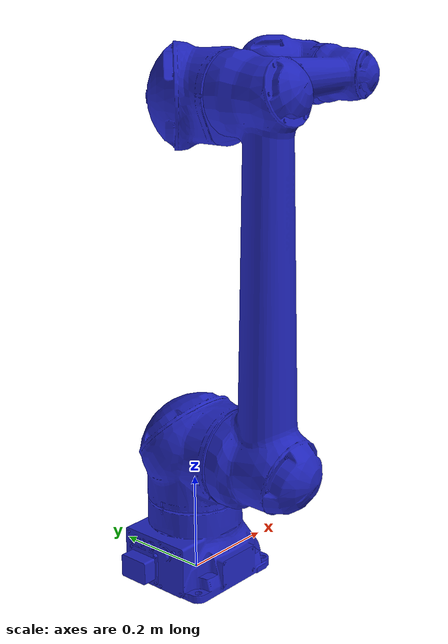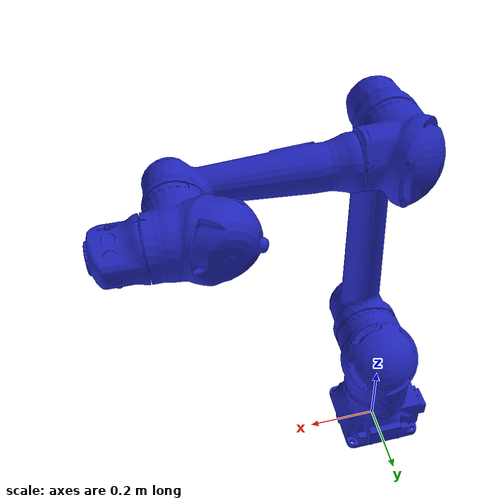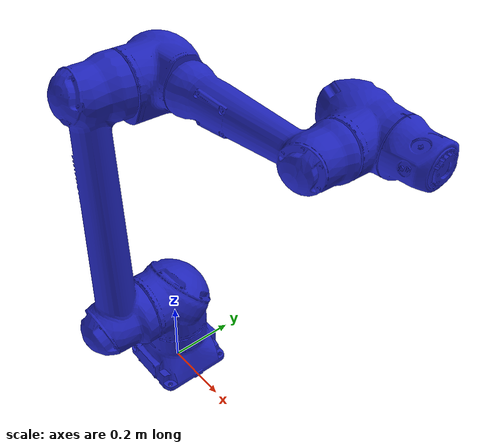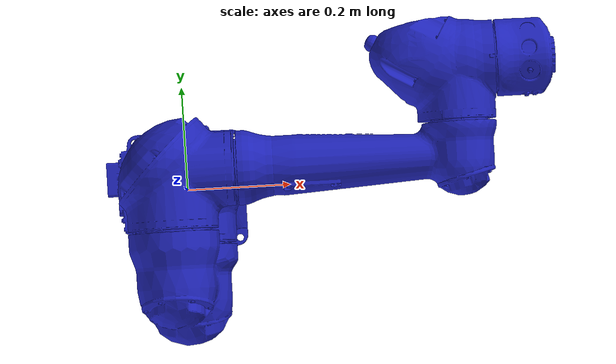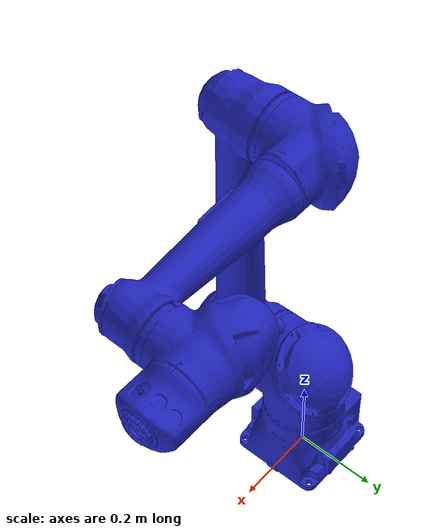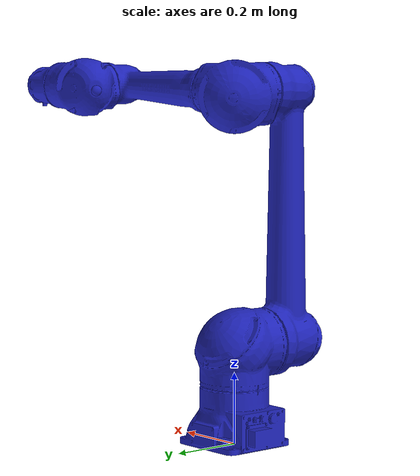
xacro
<?xml version="1.0"?>
<robot xmlns:xacro="http://www.ros.org/wiki/xacro" name="motoman_hc10dtp_b00">
    <xacro:arg name="initial_positions_file" default="initial_positions.yaml" />

    <!-- Import motoman_hc10dtp_b00 urdf file -->
    <xacro:include filename="$(find motoman_hc10_support)/urdf/hc10dtp_b00.urdf" />

</robot>

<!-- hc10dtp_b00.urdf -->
<!-- |    This document was autogenerated by xacro from hc10dtp_b00.xacro              | -->
<!-- |    EDITING THIS FILE BY HAND IS NOT RECOMMENDED                                 | -->
<robot name="motoman_hc10dtp_b00">
  <!-- link list -->
  <link name="group_1/base_link">
    <visual>
      <geometry>
        <mesh filename="package://motoman_hc10_support/meshes/hc10dt_b10/visual/base_link.dae"/>
      </geometry>
      <material name="">
        <color rgba="0.12941176470588237 0.14901960784313725 0.7490196078431373 1.0"/>
      </material>
    </visual>
    <collision>
      <geometry>
        <mesh filename="package://motoman_hc10_support/meshes/hc10dt_b10/collision/base_link.stl"/>
      </geometry>
    </collision>
  </link>
  <link name="group_1/link_1">
    <visual>
      <geometry>
        <mesh filename="package://motoman_hc10_support/meshes/hc10dt_b10/visual/link_1_s.dae"/>
      </geometry>
      <material name="">
        <color rgba="0.12941176470588237 0.14901960784313725 0.7490196078431373 1.0"/>
      </material>
    </visual>
    <collision>
      <geometry>
        <mesh filename="package://motoman_hc10_support/meshes/hc10dt_b10/collision/link_1_s.stl"/>
      </geometry>
    </collision>
  </link>
  <link name="group_1/link_2">
    <visual>
      <geometry>
        <mesh filename="package://motoman_hc10_support/meshes/hc10dt_b10/visual/link_2_l.dae"/>
      </geometry>
      <material name="">
        <color rgba="0.12941176470588237 0.14901960784313725 0.7490196078431373 1.0"/>
      </material>
    </visual>
    <collision>
      <geometry>
        <mesh filename="package://motoman_hc10_support/meshes/hc10dt_b10/collision/link_2_l.stl"/>
      </geometry>
    </collision>
  </link>
  <link name="group_1/link_3">
    <visual>
      <geometry>
        <mesh filename="package://motoman_hc10_support/meshes/hc10dt_b10/visual/link_3_u.dae"/>
      </geometry>
      <material name="">
        <color rgba="0.12941176470588237 0.14901960784313725 0.7490196078431373 1.0"/>
      </material>
    </visual>
    <collision>
      <geometry>
        <mesh filename="package://motoman_hc10_support/meshes/hc10dt_b10/collision/link_3_u.stl"/>
      </geometry>
    </collision>
  </link>
  <link name="group_1/link_4">
    <visual>
      <geometry>
        <mesh filename="package://motoman_hc10_support/meshes/hc10dt_b10/visual/link_4_r.dae"/>
      </geometry>
      <material name="">
        <color rgba="0.12941176470588237 0.14901960784313725 0.7490196078431373 1.0"/>
      </material>
    </visual>
    <collision>
      <geometry>
        <mesh filename="package://motoman_hc10_support/meshes/hc10dt_b10/collision/link_4_r.stl"/>
      </geometry>
    </collision>
  </link>
  <link name="group_1/link_5">
    <visual>
      <geometry>
        <mesh filename="package://motoman_hc10_support/meshes/hc10dt_b10/visual/link_5_b.dae"/>
      </geometry>
      <material name="">
        <color rgba="0.12941176470588237 0.14901960784313725 0.7490196078431373 1.0"/>
      </material>
    </visual>
    <collision>
      <geometry>
        <mesh filename="package://motoman_hc10_support/meshes/hc10dt_b10/collision/link_5_b.stl"/>
      </geometry>
    </collision>
  </link>
  <link name="group_1/link_6">
    <visual>
      <geometry>
        <!-- HC10 DTP reuses HC10DT-B10 meshes of all links, except for link 6 (T) -->
        <mesh filename="package://motoman_hc10_support/meshes/hc10dtp_b00/visual/link_6_t.dae"/>
      </geometry>
      <material name="">
        <color rgba="0.12941176470588237 0.14901960784313725 0.7490196078431373 1.0"/>
      </material>
    </visual>
    <collision>
      <geometry>
        <!-- HC10 DTP reuses HC10DT-B10 meshes of all links, except for link 6 (T) -->
        <mesh filename="package://motoman_hc10_support/meshes/hc10dtp_b00/collision/link_6_t.stl"/>
      </geometry>
    </collision>
  </link>
  <!-- end of link list -->
  <!-- joint list -->
  <joint name="group_1/joint_1" type="revolute">
    <parent link="group_1/base_link"/>
    <child link="group_1/link_1"/>
    <origin rpy="0 0 0" xyz="0 0 0.275"/>
    <axis xyz="0 0 1"/>
    <limit effort="368.48" lower="-3.6651914291880923" upper="3.6651914291880923" velocity="2.2689280275926285"/>
  </joint>
  <joint name="group_1/joint_2" type="revolute">
    <parent link="group_1/link_1"/>
    <child link="group_1/link_2"/>
    <origin rpy="0 0 0" xyz="0 0 0"/>
    <axis xyz="0 1 0"/>
    <limit effort="414.54" lower="-3.141592653589793" upper="3.141592653589793" velocity="2.2689280275926285"/>
  </joint>
  <joint name="group_1/joint_3" type="revolute">
    <parent link="group_1/link_2"/>
    <child link="group_1/link_3"/>
    <origin rpy="0 0 0" xyz="0 0 0.700"/>
    <axis xyz="0 -1 0"/>
    <limit effort="158.76" lower="-5.061454830783556" upper="5.061454830783556" velocity="3.141592653589793"/>
  </joint>
  <joint name="group_1/joint_4" type="revolute">
    <parent link="group_1/link_3"/>
    <child link="group_1/link_4"/>
    <origin rpy="0 0 0" xyz="0.500 0 0"/>
    <axis xyz="-1 0 0"/>
    <limit effort="41.16" lower="-3.6651914291880923" upper="3.6651914291880923" velocity="3.141592653589793"/>
  </joint>
  <joint name="group_1/joint_5" type="revolute">
    <parent link="group_1/link_4"/>
    <child link="group_1/link_5"/>
    <origin rpy="0 0 0" xyz="0 0.162 0"/>
    <axis xyz="0 -1 0"/>
    <limit effort="33.32" lower="-3.141592653589793" upper="3.141592653589793" velocity="4.363323129985824"/>
  </joint>
  <joint name="group_1/joint_6" type="revolute">
    <parent link="group_1/link_5"/>
    <child link="group_1/link_6"/>
    <origin rpy="0 0 0" xyz="0 0 0"/>
    <axis xyz="-1 0 0"/>
    <limit effort="31.36" lower="-3.6651914291880923" upper="3.6651914291880923" velocity="4.363323129985824"/>
  </joint>
  <!-- end of joint list -->
  <!-- ROS-Industrial 'flange' frame: attachment point for EEF models -->
  <link name="group_1/flange"/>
  <joint name="group_1/joint_6-flange" type="fixed">
    <origin rpy="0 0 0" xyz="0.170 0 0"/>
    <parent link="group_1/link_6"/>
    <child link="group_1/flange"/>
  </joint>
  <!-- ROS-Industrial 'tool0' frame: all-zeros tool frame -->
  <link name="group_1/tool0"/>
  <joint name="group_1/flange-tool0" type="fixed">
    <origin rpy="3.141592653589793 -1.5707963267948966 0" xyz="0 0 0"/>
    <parent link="group_1/flange"/>
    <child link="group_1/tool0"/>
  </joint>
  <!-- ROS base_link to Robot Manufacturer World Coordinates transform -->
  <link name="group_1/base"/>
  <joint name="group_1/base_link-base" type="fixed">
    <origin rpy="0 0 0" xyz="0 0 0.275"/>
    <parent link="group_1/base_link"/>
    <child link="group_1/base"/>
  </joint>
</robot>
